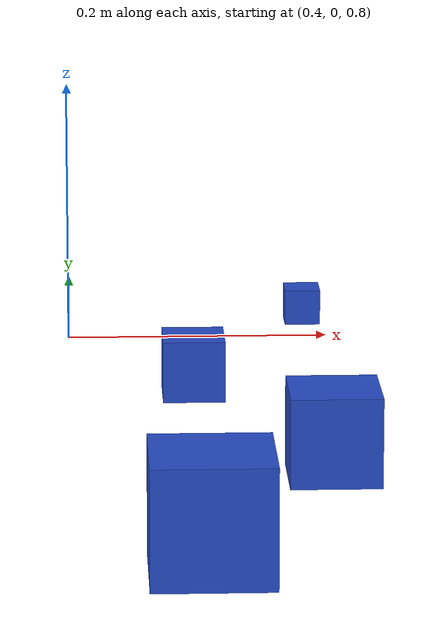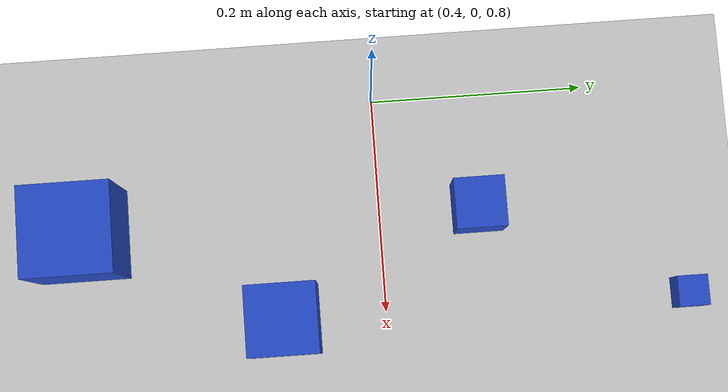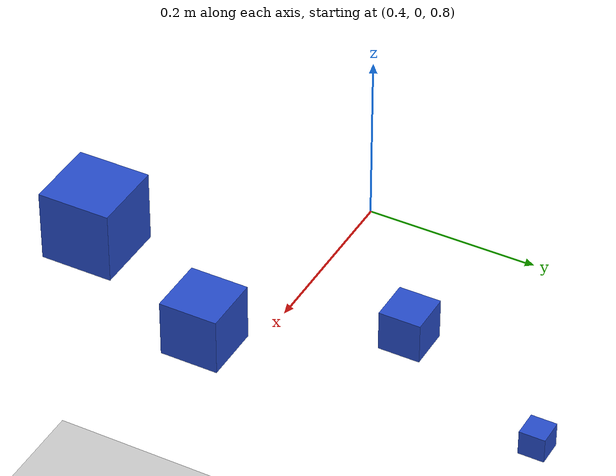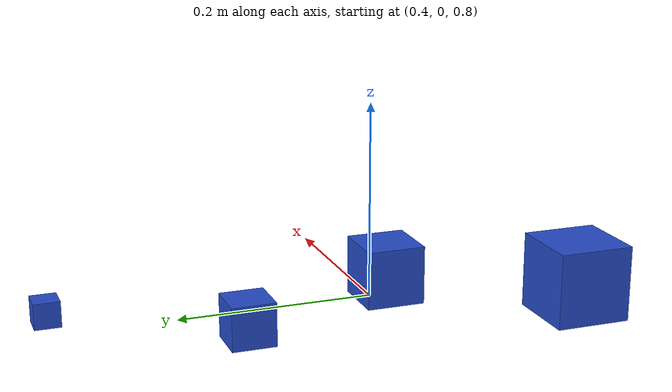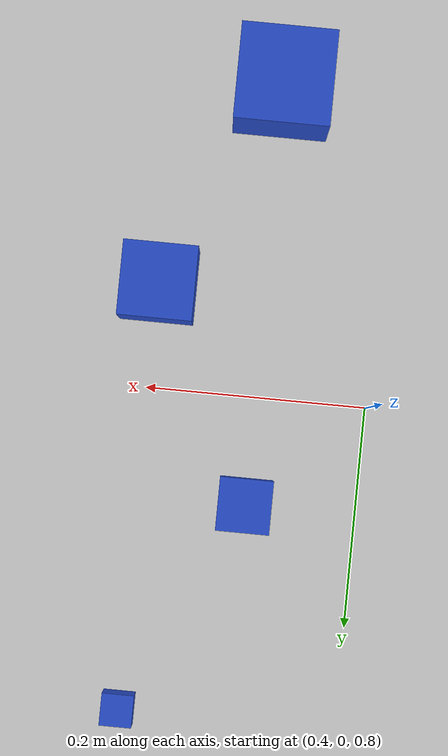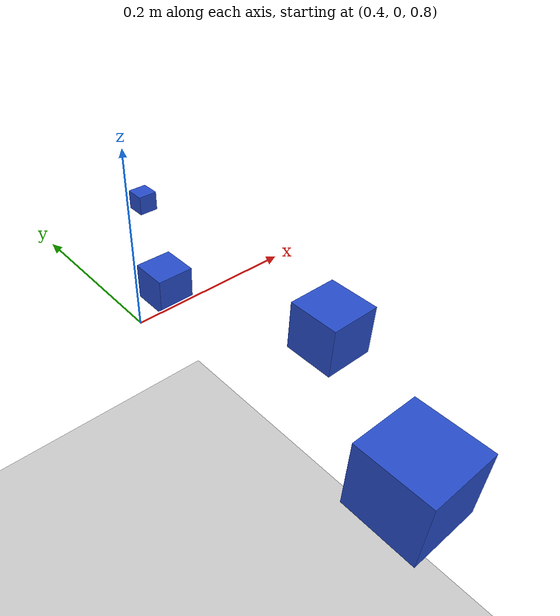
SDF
<sdf version="1.4">
 <world name="simple">
  <include><uri>model://ground_plane</uri></include>
  <include><uri>model://sun</uri></include>
  <include><uri>model://blue_cube3cm</uri><name>blue_cube3cm1</name><pose>0.6 0.3 0.75 0 0 0</pose></include>
  <include><uri>model://blue_cube5cm</uri><name>blue_cube5cm1</name><pose>0.5 0.1 0.75 0 0 0</pose></include>
  <include><uri>model://blue_cube7cm</uri><name>blue_cube7cm1</name><pose>0.6 -0.1 0.75 0 0 0</pose></include>
  <include><uri>model://blue_cube9cm</uri><name>blue_cube9cm1</name><pose>0.5 -0.3 0.75 0 0 0</pose></include>
 </world>
</sdf>

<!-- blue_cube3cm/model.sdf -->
<sdf version='1.4'>
  <model name="blue_cube3cm">
      <static>0</static>
      <link name='link'>
        <inertial>
          <mass>0.3</mass>
          <inertia>
            <ixx>0.001</ixx>
            <ixy>0.000000</ixy>
            <ixz>0.000000</ixz>
            <iyy>0.001</iyy>
            <iyz>0.000000</iyz>
            <izz>0.001</izz>
          </inertia>
        </inertial>
        <collision name='collision'>
          <geometry>
            <box>
              <size>0.030 0.030 0.030</size>
            </box>
          </geometry>
          <surface>
            <friction>
              <ode>
                <mu>5.0</mu>
                <mu2>5.0</mu2>
              </ode>
            </friction>
            <contact>
              <ode>
                <kp>1000000.0</kp>
                <kd>100.0</kd>
                <max_vel>1.0</max_vel>
                <min_depth>0.002</min_depth>
              </ode>
            </contact>
          </surface>
        </collision>
        <visual name='visual'>
          <geometry>
            <box>
              <size>0.030 0.030 0.030</size>
            </box>
          </geometry>
          <material>
            <script>
              <uri>file://media/materials/scripts/gazebo.material</uri>
              <name>Gazebo/Blue</name>
            </script>
          </material>
        </visual>
        <velocity_decay>
          <linear>0.000000</linear>
          <angular>0.000000</angular>
        </velocity_decay>
        <self_collide>0</self_collide>
        <kinematic>0</kinematic>
        <gravity>1</gravity>
      </link>
  </model>
</sdf>

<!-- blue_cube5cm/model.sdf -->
<sdf version='1.4'>
  <model name="blue_cube5cm">
      <static>0</static>
      <link name='link'>
        <inertial>
          <mass>0.3</mass>
          <inertia>
            <ixx>0.001</ixx>
            <ixy>0.000000</ixy>
            <ixz>0.000000</ixz>
            <iyy>0.001</iyy>
            <iyz>0.000000</iyz>
            <izz>0.001</izz>
          </inertia>
        </inertial>
        <collision name='collision'>
          <geometry>
            <box>
              <size>0.050 0.050 0.050</size>
            </box>
          </geometry>
          <surface>
            <friction>
              <ode>
                <mu>5.0</mu>
                <mu2>5.0</mu2>
              </ode>
            </friction>
            <contact>
              <ode>
                <kp>1000000.0</kp>
                <kd>100.0</kd>
                <max_vel>1.0</max_vel>
                <min_depth>0.002</min_depth>
              </ode>
            </contact>
          </surface>
        </collision>
        <visual name='visual'>
          <geometry>
            <box>
              <size>0.050 0.050 0.050</size>
            </box>
          </geometry>
          <material>
            <script>
              <uri>file://media/materials/scripts/gazebo.material</uri>
              <name>Gazebo/Blue</name>
            </script>
          </material>
        </visual>
        <velocity_decay>
          <linear>0.000000</linear>
          <angular>0.000000</angular>
        </velocity_decay>
        <self_collide>0</self_collide>
        <kinematic>0</kinematic>
        <gravity>1</gravity>
      </link>
  </model>
</sdf>

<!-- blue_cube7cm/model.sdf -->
<sdf version='1.4'>
  <model name="blue_cube7cm">
      <static>0</static>
      <link name='link'>
        <inertial>
          <mass>0.3</mass>
          <inertia>
            <ixx>0.001</ixx>
            <ixy>0.000000</ixy>
            <ixz>0.000000</ixz>
            <iyy>0.001</iyy>
            <iyz>0.000000</iyz>
            <izz>0.001</izz>
          </inertia>
        </inertial>
        <collision name='collision'>
          <geometry>
            <box>
              <size>0.070 0.070 0.070</size>
            </box>
          </geometry>
          <surface>
            <friction>
              <ode>
                <mu>5.0</mu>
                <mu2>5.0</mu2>
              </ode>
            </friction>
            <contact>
              <ode>
                <kp>1000000.0</kp>
                <kd>100.0</kd>
                <max_vel>1.0</max_vel>
                <min_depth>0.002</min_depth>
              </ode>
            </contact>
          </surface>
        </collision>
        <visual name='visual'>
          <geometry>
            <box>
              <size>0.070 0.070 0.070</size>
            </box>
          </geometry>
          <material>
            <script>
              <uri>file://media/materials/scripts/gazebo.material</uri>
              <name>Gazebo/Blue</name>
            </script>
          </material>
        </visual>
        <velocity_decay>
          <linear>0.000000</linear>
          <angular>0.000000</angular>
        </velocity_decay>
        <self_collide>0</self_collide>
        <kinematic>0</kinematic>
        <gravity>1</gravity>
      </link>
  </model>
</sdf>

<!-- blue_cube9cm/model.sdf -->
<sdf version='1.4'>
  <model name="blue_cube9cm">
      <static>0</static>
      <link name='link'>
        <inertial>
          <mass>0.3</mass>
          <inertia>
            <ixx>0.001</ixx>
            <ixy>0.000000</ixy>
            <ixz>0.000000</ixz>
            <iyy>0.001</iyy>
            <iyz>0.000000</iyz>
            <izz>0.001</izz>
          </inertia>
        </inertial>
        <collision name='collision'>
          <geometry>
            <box>
              <size>0.090 0.090 0.090</size>
            </box>
          </geometry>
          <surface>
            <friction>
              <ode>
                <mu>5.0</mu>
                <mu2>5.0</mu2>
              </ode>
            </friction>
            <contact>
              <ode>
                <kp>1000000.0</kp>
                <kd>100.0</kd>
                <max_vel>1.0</max_vel>
                <min_depth>0.002</min_depth>
              </ode>
            </contact>
          </surface>
        </collision>
        <visual name='visual'>
          <geometry>
            <box>
              <size>0.090 0.090 0.090</size>
            </box>
          </geometry>
          <material>
            <script>
              <uri>file://media/materials/scripts/gazebo.material</uri>
              <name>Gazebo/Blue</name>
            </script>
          </material>
        </visual>
        <velocity_decay>
          <linear>0.000000</linear>
          <angular>0.000000</angular>
        </velocity_decay>
        <self_collide>0</self_collide>
        <kinematic>0</kinematic>
        <gravity>1</gravity>
      </link>
  </model>
</sdf>
